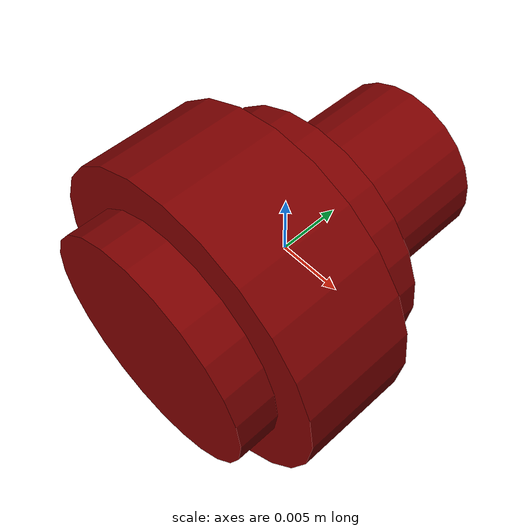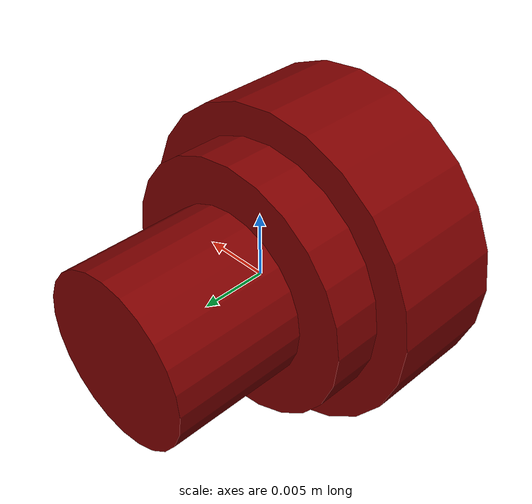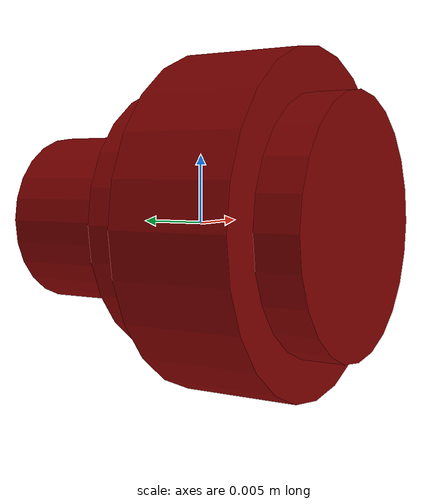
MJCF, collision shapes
<?xml version='1.0' encoding='UTF-8'?>
<mujoco model="model">
  <option timestep="0.002" gravity="0.0 0.0 -9.81"/>
  <compiler angle="radian"/>
  <asset>
    <mesh file="visuals/CabinetHandle016.obj" name="CabinetHandle016_vis"/>
    <texture file="visuals/T_BC001.png" name="tex" type="2d"/>
    <material name="mat" rgba="1 1 1 1.0" texture="tex" shininess="0.5" specular="0.3103448502657381"/>
  </asset>
  <default>
    <default class="visual">
      <geom conaffinity="0" contype="0" group="1" type="mesh"/>
    </default>
    <default class="collision">
      <geom group="0" rgba="0.5 0 0 0.5" density="1.0" solref="0.004 1" solimp="0.998 0.998 0.001"/>
    </default>
    <default class="spawn">
      <geom group="0" rgba="1 1 1 0.5" contype="0" conaffinity="0"/>
      <site group="0" rgba="1 1 1 0.5"/>
    </default>
    <default class="region">
      <geom group="1" conaffinity="0" contype="0" rgba="0 1 0 0" mass="0"/>
    </default>
  </default>
  <worldbody>
    <body>
      <body name="object">
        <geom mesh="CabinetHandle016_vis" type="mesh" solimp="0.998 0.998 0.001" solref="0.001 1" friction="0.95 0.3 0.1" class="visual" material="mat"/>
        <geom type="cylinder" pos="1.6500145434000801e-12 0.006240846589207649 0.00010406870569568127" size="0.006393986754119396 0.006356238853186369" quat="0.5 0.5 -0.4999999701976776 0.5" class="collision"/>
        <geom type="cylinder" pos="-1.2924697071141057e-26 -0.005217422731220722 8.933019125834107e-05" size="0.012200279161334038 0.004278536420315504" quat="0.5 0.5 -0.4999999701976776 0.5" class="collision"/>
        <geom type="cylinder" pos="-6.366380513045389e-12 -0.009530168026685715 5.248398520052433e-05" size="0.009160645306110382 0.003066916484385729" quat="0.5 0.5 -0.4999999701976776 0.5" class="collision"/>
        <geom type="cylinder" pos="-1.63630154588855e-20 -0.0007221857085824013 0.00016302260337397456" size="0.00974538829177618 0.0034176267217844725" quat="0.5 0.5 -0.4999999701976776 0.5" class="collision"/>
        <geom class="region" name="reg_main" type="box" pos="2.3283064365386963e-10 0.0 0.0" size="0.013594616040587426 0.013597084976732732 0.013525621801614762"/>
      </body>
    </body>
  </worldbody>
  <actuator/>
</mujoco>
